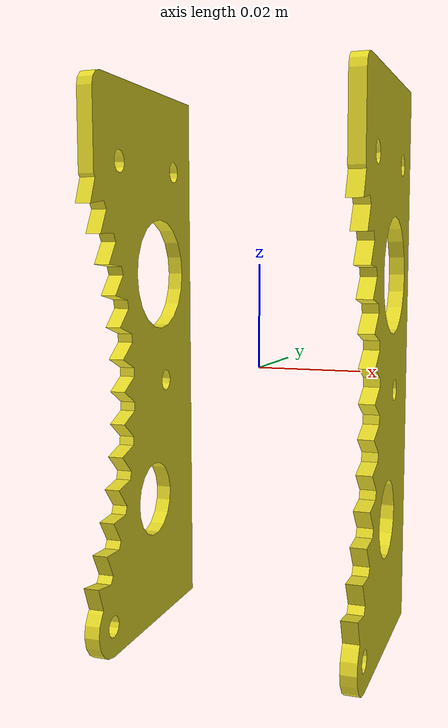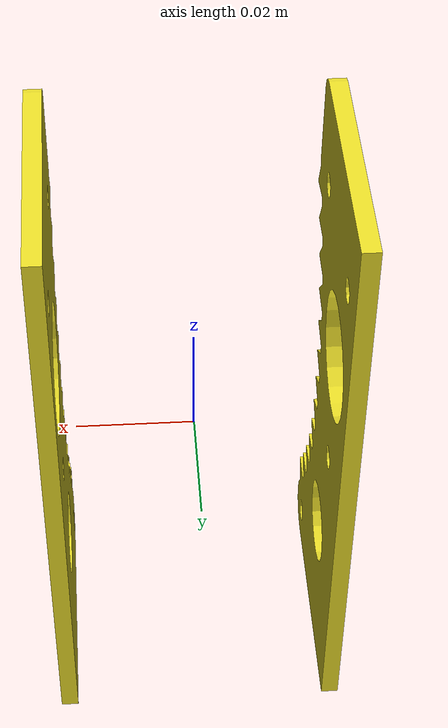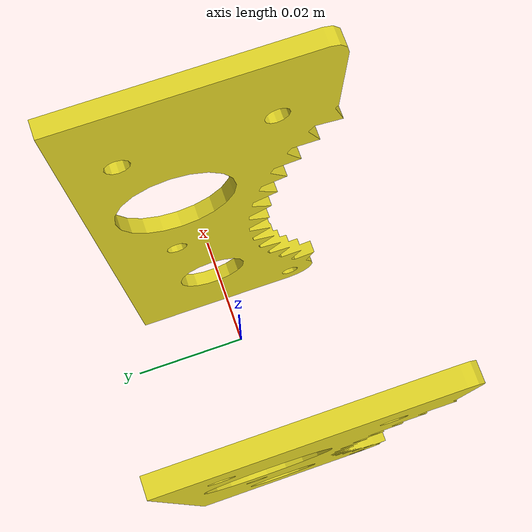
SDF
<?xml version="1.0" ?>

  <sdf version="1.5">
    <model name="iwp_claw_hand">
      <link name='base_link'>
      <inertial>
        <pose>0 0 0 0 0 0</pose>
        <mass>0.1</mass>
        <inertia>
          <ixx>0.01</ixx>
          <ixy>0</ixy>
          <ixz>0</ixz>
          <iyy>0.01</iyy>
          <iyz>0</iyz>
          <izz>0.01</izz>
        </inertia>
      </inertial>
    </link>
    <link name='hand_0'>
    <pose>-0.024 -0.0 0.0 0 -0 0</pose>
    <inertial>
      <pose>0 0 0 0 -0 0</pose>
      <mass>0.025</mass>
      <inertia>
        <ixx>9.75e-06</ixx>
        <ixy>0</ixy>
        <ixz>0</ixz>
        <iyy>0.000166704</iyy>
        <iyz>0</iyz>
        <izz>0.000167604</izz>
      </inertia>
    </inertial>
    <collision name='hand_0_collision'>
      <pose>0 0 0 0 -0 0</pose>
      <geometry>
        <mesh>
          <scale>1 1 1</scale>
          <uri>model://iwp_claw_hand/meshes/claw_hand.STL</uri>
        </mesh>
      </geometry>
      <surface>
        <contact>
          <ode />
        </contact>
        <friction>
          <ode />
        </friction>
      </surface>
    </collision>
    <visual name='hand_0_visual'>
      <pose>0 0 0 0 -0 0</pose>
      <geometry>
        <mesh>
          <scale>1 1 1</scale>
          <uri>model://iwp_claw_hand/meshes/claw_hand.STL</uri>
        </mesh>
      </geometry>
      <material>
        <script>
          <name>Gazebo/Yellow</name>
          <uri>__default__</uri>
        </script>
      </material>
    </visual>
    <gravity>1</gravity>
    <velocity_decay />
    <self_collide>0</self_collide>
  </link>
  <link name='hand_1'>
  <pose>0.024 -0.0 0.0 0 -0 0</pose>
  <inertial>
    <pose>0 0 0 0 -0 0</pose>
    <mass>0.025</mass>
    <inertia>
      <ixx>9.75e-06</ixx>
      <ixy>0</ixy>
      <ixz>0</ixz>
      <iyy>0.000166704</iyy>
      <iyz>0</iyz>
      <izz>0.000167604</izz>
    </inertia>
  </inertial>
  <collision name='hand_0_collision'>
    <pose>0 0 0 0 -0 0</pose>
    <geometry>
      <mesh>
        <scale>1 1 1</scale>
        <uri>model://iwp_claw_hand/meshes/claw_hand.STL</uri>
      </mesh>
    </geometry>
    <surface>
      <contact>
        <ode />
      </contact>
      <friction>
        <ode />
      </friction>
    </surface>
  </collision>
  <visual name='hand_0_visual'>
    <pose>0 0 0 0 -0 0</pose>
    <geometry>
      <mesh>
        <scale>1 1 1</scale>
        <uri>model://iwp_claw_hand/meshes/claw_hand.STL</uri>
      </mesh>
    </geometry>
    <material>
      <script>
        <name>Gazebo/Yellow</name>
        <uri>__default__</uri>
      </script>
    </material>
  </visual>
  <gravity>1</gravity>
  <velocity_decay />
  <self_collide>0</self_collide>
</link>
<joint name="claw_hand_joint" type="fixed">
  <parent>hand_0</parent>
  <child>hand_1</child>
  <pose>0.0 0 0.0 0 0 0</pose>
</joint>
<joint name="base_link_joint" type="fixed">
  <parent>base_link</parent>
  <child>hand_0</child>
  <pose>0.0 0 0.0 0 0 0</pose>
</joint>
</model>
</sdf>
